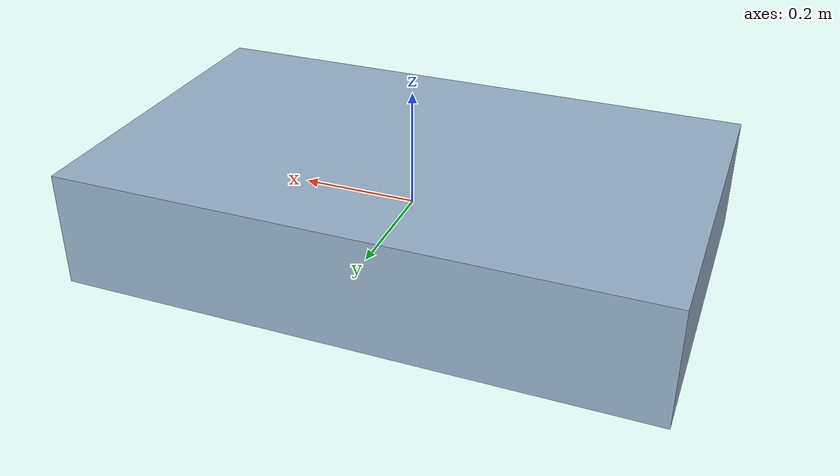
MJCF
<mujoco model="simplecar">
  <compiler angle="radian"/>

  <asset>
    <material name="black" rgba="0 0 0 1"/>
    <material name="blue" rgba="0.6 0.7 0.8 1"/>
  </asset>

  <worldbody>
    <body name="base_link" pos="0 0 0"> <inertial pos="0 0 0" mass="6" diaginertia="0.2 0.2 0.2"/>
      <geom size="0.5 0.3 0.1" type="box" rgba="0.6 0.7 0.8 1"/> <site name="car_body_site" pos="0 0 0.05"/> <body name="left_hinge" pos="0.2 0 0">
        <inertial pos="0 0 0" mass="0.01" diaginertia="5e-06 5e-06 5e-06"/>
        <joint name="base_to_left_hinge" pos="0 0 0" axis="0 0 1" range="-0.5 0.5" type="hinge"/> <geom size="0.10 0.01 0.01" type="box" rgba="0 0 0 1"/> <body name="left_front_wheel" pos="0 0.2 0">
          <inertial pos="0 0 0" mass="0.3" diaginertia="0.4 0.4 0.2"/>
          <joint name="left_hinge_to_left_front_wheel" pos="0 0 0" axis="0 1 0" type="hinge"/> <geom size="0.1 0.025" quat="0.500023 0.5 0.5 -0.499977" type="cylinder" rgba="0 0 0 1"/>
        </body>
      </body>

      <body name="right_hinge" pos="0.2 0 0">
        <inertial pos="0 0 0" mass="0.01" diaginertia="5e-06 5e-06 5e-06"/>
        <joint name="base_to_right_hinge" pos="0 0 0" axis="0 0 1" range="-0.5 0.5" type="hinge"/>
        <geom size="0.10 0.01 0.01" type="box" rgba="0 0 0 1"/>
        <body name="right_front_wheel" pos="0 -0.2 0">
          <inertial pos="0 0 0" mass="0.3" diaginertia="0.4 0.4 0.2"/>
          <joint name="right_hinge_to_right_front_wheel" pos="0 0 0" axis="0 1 0" type="hinge"/>
          <geom size="0.1 0.025" quat="0.500023 -0.5 -0.5 -0.499977" type="cylinder" rgba="0 0 0 1"/>
        </body>
      </body>

      <body name="left_back_wheel" pos="-0.2 0.175 0">
        <inertial pos="0 0 0" mass="0.3" diaginertia="0.4 0.4 0.2"/>
        <joint name="base_to_left_back_wheel" pos="0 0 0" axis="0 1 0" type="hinge"/>
        <geom size="0.1 0.025" quat="0.500023 0.5 0.5 -0.499977" type="cylinder" rgba="0 0 0 1"/>
      </body>

      <body name="right_back_wheel" pos="-0.2 -0.175 0">
        <inertial pos="0 0 0" mass="0.3" diaginertia="0.4 0.4 0.2"/>
        <joint name="base_to_right_back_wheel" pos="0 0 0" axis="0 1 0" type="hinge"/>
        <geom size="0.1 0.025" quat="0.500023 -0.5 -0.5 -0.499977" type="cylinder" rgba="0 0 0 1"/>
      </body>
    </body> </worldbody>

  <actuator>
    <motor name="fl_motor" joint="left_hinge_to_left_front_wheel" gear="10"/> <motor name="fr_motor" joint="right_hinge_to_right_front_wheel" gear="10"/>
    <motor name="rl_motor" joint="base_to_left_back_wheel" gear="10"/>
    <motor name="rr_motor" joint="base_to_right_back_wheel" gear="10"/>

    <motor name="left_hinge_motor" joint="base_to_left_hinge" gear="10"/>
    <motor name="right_hinge_motor" joint="base_to_right_hinge" gear="10"/>

  </actuator>

  <sensor>
    <accelerometer name="accel_z" site="car_body_site"/>
    <gyro name="gyro_pitch" site="car_body_site"/>
  </sensor>

</mujoco>
